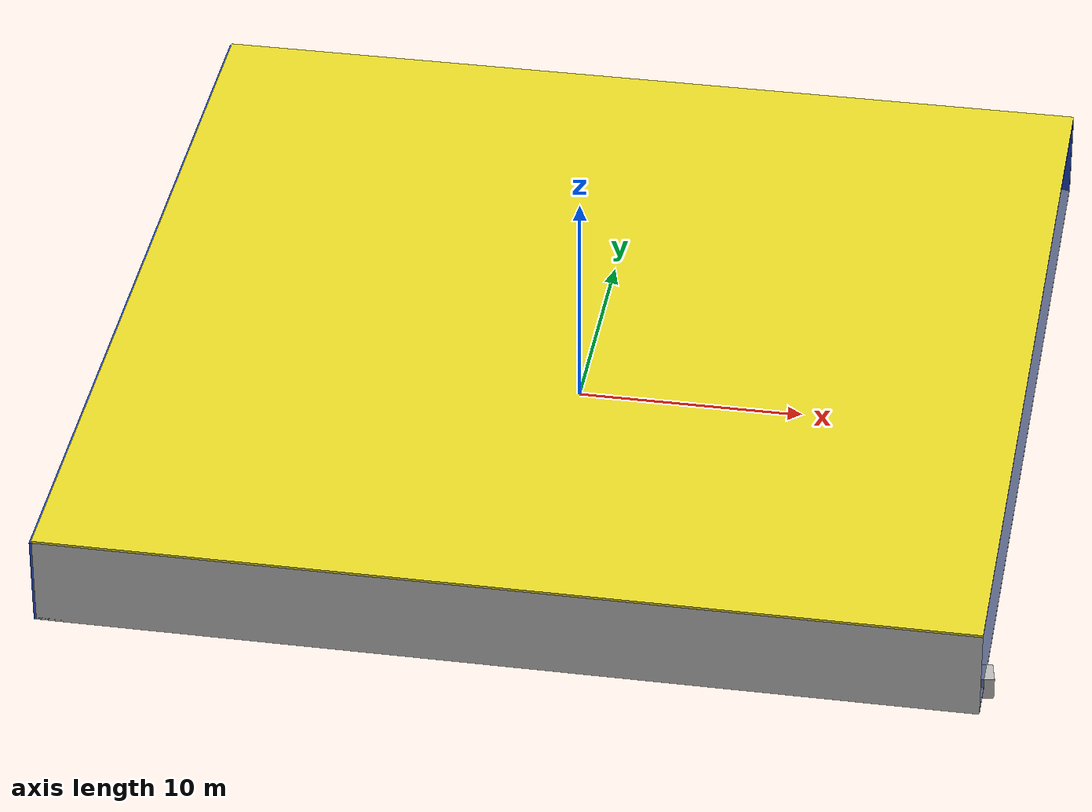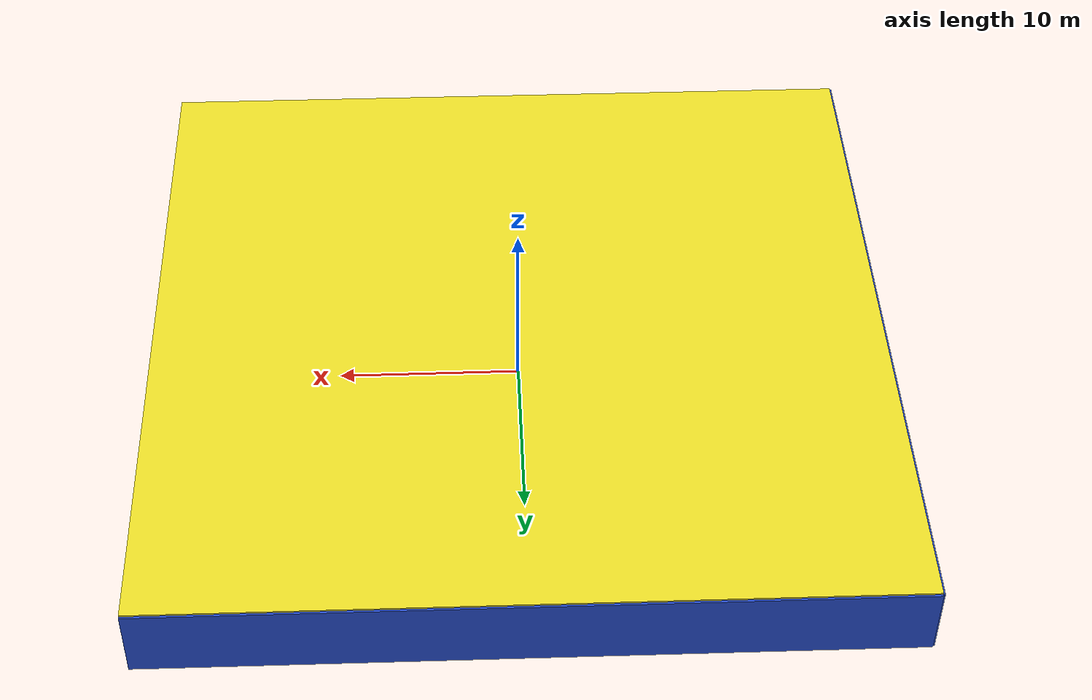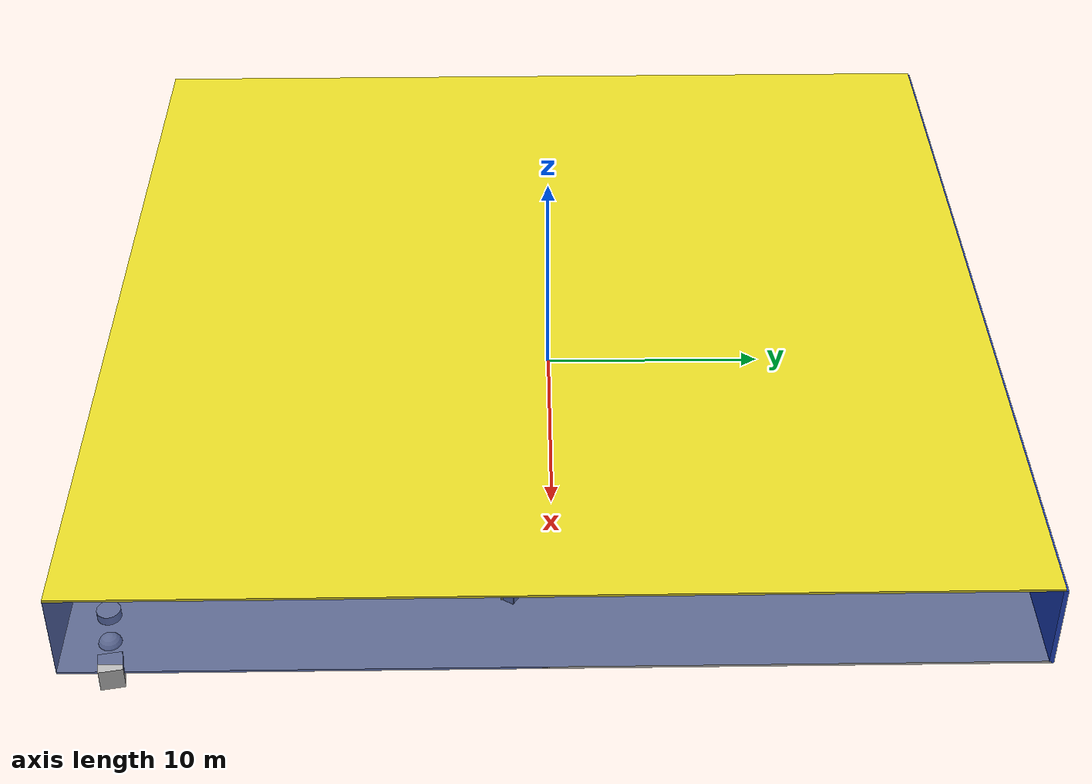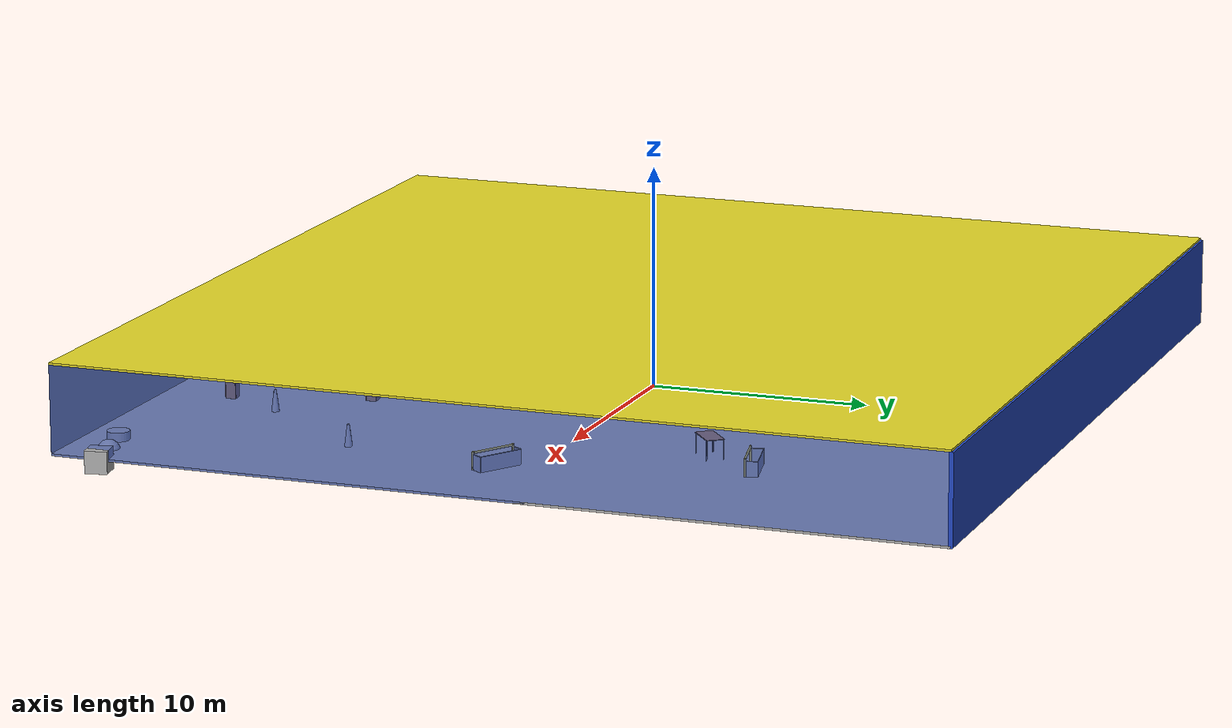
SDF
<sdf version="1.4">
 <world name="default">
  <physics type="ode">
   <max_step_size>0.001</max_step_size>
   <real_time_factor>1</real_time_factor>
   <real_time_update_rate>1000</real_time_update_rate>
   <gravity>0 0 -9.8</gravity>
  </physics>
  <scene><ambient>0.4 0.4 0.4 1</ambient><background>0.7 0.7 0.7 1</background><shadows>1</shadows></scene>
  <model name="Surrounding">
   <static>1</static>
   <link name="Ceiling">
    <collision name="Ceiling_Collision"><geometry><box><size>40 40 0.1</size></box></geometry></collision>
    <visual name="Ceiling_Visual">
     <geometry><box><size>40 40 0.1</size></box></geometry>
     <material>
      <script><uri>file://media/materials/scripts/gazebo.material</uri><name>Gazebo/Yellow</name></script>
     </material>
    </visual>
    <pose>0 0 4.05 0 0 0</pose>
   </link>
   <link name="Wall_South">
    <collision name="Wall_South_Collision">
     <geometry><box><size>40 0 4</size></box></geometry>
     <pose>0 0 2 0 -0 0</pose>
    </collision>
    <visual name="Wall_South_Visual">
     <pose>0 0 2 0 -0 0</pose>
     <geometry><box><size>40 0 4</size></box></geometry>
     <material>
      <script><uri>file://media/materials/scripts/gazebo.material</uri><name>Gazebo/LightOff</name></script>
     </material>
    </visual>
    <velocity_decay><linear>0</linear><angular>0</angular></velocity_decay>
    <pose>0 -20 0 0 -0 0</pose>
   </link>
   <link name="Wall_East">
    <collision name="Wall_21_Collision">
     <geometry><box><size>40 0 4</size></box></geometry>
     <pose>0 0 2 0 -0 0</pose>
    </collision>
    <visual name="Wall_21_Visual">
     <pose>0 0 2 0 -0 0</pose>
     <geometry><box><size>40 0 4</size></box></geometry>
     <material>
      <script><uri>file://media/materials/scripts/gazebo.material</uri><name>Gazebo/BlueTransparent</name></script>
     </material>
    </visual>
    <velocity_decay><linear>0</linear><angular>0</angular></velocity_decay>
    <pose>20 0 0 0 -0 1.5708</pose>
   </link>
   <link name="Wall_North">
    <collision name="Wall_22_Collision">
     <geometry><box><size>40 0.2 4</size></box></geometry>
     <pose>0 0 2 0 -0 0</pose>
    </collision>
    <visual name="Wall_22_Visual">
     <pose>0 0 2 0 -0 0</pose>
     <geometry><box><size>40 0.2 4</size></box></geometry>
     <material>
      <script><uri>file://media/materials/scripts/gazebo.material</uri><name>Gazebo/Blue</name></script>
     </material>
    </visual>
    <velocity_decay><linear>0</linear><angular>0</angular></velocity_decay>
    <pose>0 20 0 0 -0 0</pose>
   </link>
   <link name="Wall_West">
    <collision name="Wall_23_Collision">
     <geometry><box><size>40 0.2 4</size></box></geometry>
     <pose>0 0 2 0 -0 0</pose>
    </collision>
    <visual name="Wall_23_Visual">
     <pose>0 0 2 0 -0 0</pose>
     <geometry><box><size>40 0.2 4</size></box></geometry>
     <material>
      <script><uri>file://media/materials/scripts/gazebo.material</uri><name>Gazebo/Blue</name></script>
     </material>
    </visual>
    <velocity_decay><linear>0</linear><angular>0</angular></velocity_decay>
    <pose>-20 0 0 0 0 -1.5708</pose>
   </link>
   <link name="Ground_link">
    <collision name="collision">
     <pose>0 0 .05 0 -0 0</pose>
     <geometry><box><size>40 40 0.1</size></box></geometry>
    </collision>
    <visual name="visual">
     <pose>0 0 .05 0 -0 0</pose>
     <geometry><box><size>40 40 0.1</size></box></geometry>
     <material>
      <script><uri>file://media/materials/scripts/gazebo.material</uri><name>Gazebo/JointAnchor</name></script>
     </material>
    </visual>
   </link>
   <static>1</static>
  </model>
  <spherical_coordinates>
   <surface_model>EARTH_WGS84</surface_model>
   <latitude_deg>0</latitude_deg>
   <longitude_deg>0</longitude_deg>
   <elevation>0</elevation>
   <heading_deg>0</heading_deg>
  </spherical_coordinates>
  <light name="lightball_0" type="diffuse">
   <diffuse>0.8 0.8 0.8 1</diffuse>
   <specular>0.2 0.2 0.2 1</specular>
   <attenuation>
    <range>100</range>
    <constant>0.7</constant>
    <linear>0.01</linear>
    <quadratic>0.001</quadratic>
   </attenuation>
   <direction>-0.5 0.1 -0.9</direction>
   <pose>18.4746722084 -15.3143285718 3.06621163098 0 0 0</pose>
  </light>
  <include>
   <uri>model://robocup_3Dsim_goal</uri>
   <pose>-16.6803846 14.4970352041 0 0 0 2.13332449425</pose>
  </include>
  <include><uri>model://cabinet</uri><pose>-11.3547218669 -15.0713048821 0 0 0 1.00112441998</pose></include>
  <include>
   <uri>model://textured_shapes</uri>
   <pose>-12.5507739588 -0.528864094843 0 0 0 0.98857972124</pose>
  </include>
  <include>
   <uri>model://construction_cone</uri>
   <pose>-11.6344234217 19.3330163768 0 0 0 0.96620669713</pose>
  </include>
  <include><uri>model://table</uri><pose>-9.66717411428 -7.64779849057 0 0 0 1.8220682734</pose></include>
  <include>
   <uri>model://robocup_3Dsim_goal</uri>
   <pose>-4.56773384621 -8.00097673818 0 0 0 0.745396736649</pose>
  </include>
  <include><uri>model://cabinet</uri><pose>-4.46416555028 1.30149293229 0 0 0 1.54813866483</pose></include>
  <include><uri>model://cabinet</uri><pose>-4.98176115684 18.3562745493 0 0 0 2.10712333686</pose></include>
  <include><uri>model://table</uri><pose>-2.04505803217 15.7791290002 0 0 0 1.44291282116</pose></include>
  <include><uri>model://table</uri><pose>1.23148799536 -17.2798227203 0 0 0 2.79415040299</pose></include>
  <include>
   <uri>model://construction_cone</uri>
   <pose>3.58742226361 -5.34348848101 0 0 0 2.6252572143</pose>
  </include>
  <include>
   <uri>model://construction_cone</uri>
   <pose>2.81587736469 15.7851168654 0 0 0 1.70582944953</pose>
  </include>
  <include><uri>model://cabinet</uri><pose>6.99989431587 -10.7239043447 0 0 0 0.031955138806</pose></include>
  <include><uri>model://cabinet</uri><pose>8.76202942358 -16.748435262 0 0 0 0.063693391024</pose></include>
  <include>
   <uri>model://construction_cone</uri>
   <pose>10.2773397681 -13.9647080358 0 0 0 0.96571246425</pose>
  </include>
  <include><uri>model://table</uri><pose>10.6413181056 6.45443374803 0 0 0 0.679133423788</pose></include>
  <include>
   <uri>model://robocup_3Dsim_goal</uri>
   <pose>12.1793691248 8.6986851986 0 0 0 1.78889401132</pose>
  </include>
  <include>
   <uri>model://construction_cone</uri>
   <pose>14.5033544783 -8.60144064526 0 0 0 0.574268881745</pose>
  </include>
  <include>
   <uri>model://robocup_3Dsim_goal</uri>
   <pose>15.2704490388 -1.60419710287 0 0 0 1.00747944067</pose>
  </include>
  <include>
   <uri>model://textured_shapes</uri>
   <pose>18.3765777917 -18.0803808169 0 0 0 1.74741287666</pose>
  </include>
 </world>
</sdf>

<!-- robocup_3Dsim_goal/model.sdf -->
<sdf version="1.5">
  <model name="robocup_3d_goal">
    <static>true</static>
    <link name="left_post">
      <pose>0 1.05 0.45 0 0 0</pose>
      <collision name="collision">
        <geometry>
          <cylinder>
            <radius>0.05</radius>
            <length>0.9</length>
          </cylinder>
        </geometry>
      </collision>
      <visual name="visual">
        <geometry>
          <cylinder>
            <radius>0.05</radius>
            <length>0.9</length>
          </cylinder>
        </geometry>
        <material>
          <script>
            <uri>file://media/materials/scripts/gazebo.material</uri>
            <name>Gazebo/ZincYellow</name>
          </script>
        </material>
      </visual>
    </link>
    <link name="left_support_horiz_lower">
      <pose>0.30 1.05 0.01 0 0 0</pose>
      <collision name="collision">
        <geometry>
          <box>
            <size>0.50 0.02 0.02</size>
          </box>
        </geometry>
      </collision>
      <visual name="visual">
        <geometry>
          <box>
            <size>0.50 0.02 0.02</size>
          </box>
        </geometry>
        <material>
          <script>
            <uri>file://media/materials/scripts/gazebo.material</uri>
            <name>Gazebo/White</name>
          </script>
        </material>
      </visual>
    </link>
    <link name="left_support_horiz_upper">
      <pose>0.30 1.05 0.79 0 0 0</pose>
      <collision name="collision">
        <geometry>
          <box>
            <size>0.50 0.02 0.02</size>
          </box>
        </geometry>
      </collision>
      <visual name="visual">
        <geometry>
          <box>
            <size>0.50 0.02 0.02</size>
          </box>
        </geometry>
        <material>
          <script>
            <uri>file://media/materials/scripts/gazebo.material</uri>
            <name>Gazebo/White</name>
          </script>
        </material>
      </visual>
    </link>
    <link name="left_support_vertical">
      <pose>0.56 1.05 0.4 0 1.5708 0</pose>
      <collision name="collision">
        <geometry>
          <box>
            <size>0.80 0.02 0.02</size>
          </box>
        </geometry>
      </collision>
      <visual name="visual">
        <geometry>
          <box>
            <size>0.80 0.02 0.02</size>
          </box>
        </geometry>
        <material>
          <script>
            <uri>file://media/materials/scripts/gazebo.material</uri>
            <name>Gazebo/White</name>
          </script>
        </material>
      </visual>
    </link>
    <link name="right_support_horiz_lower">
      <pose>0.30 -1.05 0.01 0 0 0</pose>
      <collision name="collision">
        <geometry>
          <box>
            <size>0.50 0.02 0.02</size>
          </box>
        </geometry>
      </collision>
      <visual name="visual">
        <geometry>
          <box>
            <size>0.50 0.02 0.02</size>
          </box>
        </geometry>
        <material>
          <script>
            <uri>file://media/materials/scripts/gazebo.material</uri>
            <name>Gazebo/White</name>
          </script>
        </material>
      </visual>
    </link>
    <link name="right_support_horiz_upper">
      <pose>0.30 -1.05 0.79 0 0 0</pose>
      <collision name="collision">
        <geometry>
          <box>
            <size>0.50 0.02 0.02</size>
          </box>
        </geometry>
      </collision>
      <visual name="visual">
        <geometry>
          <box>
            <size>0.50 0.02 0.02</size>
          </box>
        </geometry>
        <material>
          <script>
            <uri>file://media/materials/scripts/gazebo.material</uri>
            <name>Gazebo/White</name>
          </script>
        </material>
      </visual>
    </link>
    <link name="right_support_vertical">
      <pose>0.56 -1.05 0.4 0 1.5708 0</pose>
      <collision name="collision">
        <geometry>
          <box>
            <size>0.80 0.02 0.02</size>
          </box>
        </geometry>
      </collision>
      <visual name="visual">
        <geometry>
          <box>
            <size>0.80 0.02 0.02</size>
          </box>
        </geometry>
        <material>
          <script>
            <uri>file://media/materials/scripts/gazebo.material</uri>
            <name>Gazebo/White</name>
          </script>
        </material>
      </visual>
    </link>
    <link name="center_support_horiz_lower">
      <pose>0.56 0 0.01 0 1.5708 0</pose>
      <collision name="collision">
        <geometry>
          <box>
            <size>0.02 2.08 0.02</size>
          </box>
        </geometry>
      </collision>
      <visual name="visual">
        <geometry>
          <box>
            <size>0.02 2.08 0.02</size>
          </box>
        </geometry>
        <material>
          <script>
            <uri>file://media/materials/scripts/gazebo.material</uri>
            <name>Gazebo/White</name>
          </script>
        </material>
      </visual>
    </link>
    <link name="center_support_horiz_upper">
      <pose>0.56 0 0.79 0 1.5708 0</pose>
      <collision name="collision">
        <geometry>
          <box>
            <size>0.02 2.08 0.02</size>
          </box>
        </geometry>
      </collision>
      <visual name="visual">
        <geometry>
          <box>
            <size>0.02 2.08 0.02</size>
          </box>
        </geometry>
        <material>
          <script>
            <uri>file://media/materials/scripts/gazebo.material</uri>
            <name>Gazebo/White</name>
          </script>
        </material>
      </visual>
    </link>
    <link name="right_post">
      <pose>0 -1.05 0.45 0 0 0</pose>
      <collision name="collision">
        <geometry>
          <cylinder>
            <radius>0.05</radius>
            <length>0.9</length>
          </cylinder>
        </geometry>
      </collision>
      <visual name="visual">
        <geometry>
          <cylinder>
            <radius>0.05</radius>
            <length>0.9</length>
          </cylinder>
        </geometry>
        <material>
          <script>
            <uri>file://media/materials/scripts/gazebo.material</uri>
            <name>Gazebo/ZincYellow</name>
          </script>
        </material>
      </visual>
    </link>
    <link name="crossbar">
      <pose>0 0 0.85 1.57 1.57 0</pose>
      <collision name="collision">
        <geometry>
          <cylinder>
            <radius>0.05</radius>
            <length>2.0</length>
          </cylinder>
        </geometry>
      </collision>
      <visual name="visual">
        <geometry>
          <cylinder>
            <radius>0.05</radius>
            <length>2.0</length>
          </cylinder>
        </geometry>
        <material>
          <script>
            <uri>file://media/materials/scripts/gazebo.material</uri>
            <name>Gazebo/ZincYellow</name>
          </script>
        </material>
      </visual>
    </link>
    <link name="center_net">
      <pose>0.56 0 0.40 0 0 0</pose>
      <collision name="collision">
        <geometry>
          <box>
            <size>0.01 2.1 0.80</size>
          </box>
        </geometry>
      </collision>
      <visual name="visual">
        <geometry>
          <box>
            <size>0.01 2.1 0.80</size>
          </box>
        </geometry>
        <material>
          <script>
            <uri>model://../model_source/models/robocup09_spl_field/materials/scripts/</uri>
            <uri>model://../model_source/models/robocup09_spl_field/materials/textures/</uri>
            <name>RoboCup/Net</name>
          </script>
        </material>
      </visual>
    </link>
    <link name="left_net">
      <pose>0.30 1.05 0.40 0 0 0</pose>
      <collision name="collision">
        <geometry>
          <box>
            <size>0.50 0.01 0.76</size>
          </box>
        </geometry>
      </collision>
      <visual name="visual">
        <geometry>
          <box>
            <size>0.50 0.01 0.76</size>
          </box>
        </geometry>
        <material>
          <script>
            <uri>model://../model_source/models/robocup09_spl_field/materials/scripts/</uri>
            <uri>model://../model_source/models/robocup09_spl_field/materials/textures/</uri>
            <name>RoboCup/Net</name>
          </script>
        </material>
      </visual>
    </link>
    <link name="right_net">
      <pose>0.30 -1.05 0.40 0 0 0</pose>
      <collision name="collision">
        <geometry>
          <box>
            <size>0.50 0.01 0.76</size>
          </box>
        </geometry>
      </collision>
      <visual name="visual">
        <geometry>
          <box>
            <size>0.50 0.01 0.76</size>
          </box>
        </geometry>
        <material>
          <script>
            <uri>model://../model_source/models/robocup09_spl_field/materials/scripts/</uri>
            <uri>model://../model_source/models/robocup09_spl_field/materials/textures/</uri>
            <name>RoboCup/Net</name>
          </script>
        </material>
      </visual>
    </link>
  </model>
</sdf>

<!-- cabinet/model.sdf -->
<sdf version="1.5">
  <model name="cabinet">
    <static>true</static>
    <link name="cabinet_bottom_plate">
      <inertial>
        <pose>0 0 -1 0 0 0</pose>
        <inertia>
          <ixx>2.050000</ixx>
          <ixy>0</ixy>
          <ixz>0</ixz>
          <iyy>2.050000</iyy>
          <iyz>0</iyz>
          <izz>2.050000</izz>
        </inertia>
        <mass>25.000000</mass>
      </inertial>
      <collision name="cabinet_bottom_plate_geom">
        <pose>0 0 0.010000 0 0 0</pose>
        <geometry>
          <box>
            <size>0.450000 0.450000 0.020000</size>
          </box>
        </geometry>
      </collision>
      <visual name="cabinet_bottom_plate_geom_visual">
        <pose>0 0 0.010000 0 0 0</pose>
        <geometry>
          <box>
            <size>0.450000 0.450000 0.020000</size>
          </box>
        </geometry>
        <material>
          <script>
            <uri>model://media/materials/scripts/gazebo.material</uri>
            <name>Gazebo/Wood</name>
          </script>
        </material>
      </visual>
      <collision name="cabinet_bottom_plate_geom_cabinet_back_plate">
        <pose>0.235000 0 0.510000 0 0 0</pose>
        <geometry>
          <box>
            <size>0.020000 0.450000 1.020000</size>
          </box>
        </geometry>
      </collision>
      <visual name="cabinet_bottom_plate_geom_cabinet_back_plate_visual">
        <pose>0.235000 0 0.510000 0 0 0</pose>
        <geometry>
          <box>
            <size>0.020000 0.450000 1.020000</size>
          </box>
        </geometry>
        <material>
          <script>
            <uri>model://media/materials/scripts/gazebo.material</uri>
            <name>Gazebo/Wood</name>
          </script>
        </material>
      </visual>
      <collision name="cabinet_bottom_plate_geom_cabinet_left_plate">
        <pose>0 0.235000 0.510000 0 0 0</pose>
        <geometry>
          <box>
            <size>0.450000 0.020000 1.020000</size>
          </box>
        </geometry>
      </collision>
      <visual name="cabinet_bottom_plate_geom_cabinet_left_plate_visual">
        <pose>0 0.235000 0.510000 0 0 0</pose>
        <geometry>
          <box>
            <size>0.450000 0.020000 1.020000</size>
          </box>
        </geometry>
        <material>
          <script>
            <uri>model://media/materials/scripts/gazebo.material</uri>
            <name>Gazebo/Wood</name>
          </script>
        </material>
      </visual>
      <collision name="cabinet_bottom_plate_geom_cabinet_middle_plate">
        <pose>0 0 0.510000 0 0 0</pose>
        <geometry>
          <box>
            <size>0.450000 0.450000 0.020000</size>
          </box>
        </geometry>
      </collision>
      <visual name="cabinet_bottom_plate_geom_cabinet_middle_plate_visual">
        <pose>0 0 0.510000 0 0 0</pose>
        <geometry>
          <box>
            <size>0.450000 0.450000 0.020000</size>
          </box>
        </geometry>
        <material>
          <script>
            <uri>model://media/materials/scripts/gazebo.material</uri>
            <name>Gazebo/Wood</name>
          </script>
        </material>
      </visual>
      <collision name="cabinet_bottom_plate_geom_cabinet_right_plate">
        <pose>0 -0.235000 0.510000 0 0 0</pose>
        <geometry>
          <box>
            <size>0.450000 0.020000 1.020000</size>
          </box>
        </geometry>
      </collision>
      <visual name="cabinet_bottom_plate_geom_cabinet_right_plate_visual">
        <pose>0 -0.235000 0.510000 0 0 0</pose>
        <geometry>
          <box>
            <size>0.450000 0.020000 1.020000</size>
          </box>
        </geometry>
        <material>
          <script>
            <uri>model://media/materials/scripts/gazebo.material</uri>
            <name>Gazebo/Wood</name>
          </script>
        </material>
      </visual>
      <collision name="cabinet_bottom_plate_geom_cabinet_top_plate">
        <pose>0 0 1.010000 0 0 0</pose>
        <geometry>
          <box>
            <size>0.450000 0.450000 0.020000</size>
          </box>
        </geometry>
      </collision>
      <visual name="cabinet_bottom_plate_geom_cabinet_top_plate_visual">
        <pose>0 0 1.010000 0 0 0</pose>
        <geometry>
          <box>
            <size>0.450000 0.450000 0.020000</size>
          </box>
        </geometry>
        <material>
          <script>
            <uri>model://media/materials/scripts/gazebo.material</uri>
            <name>Gazebo/Wood</name>
          </script>
        </material>
      </visual>
    </link>
  </model>
</sdf>

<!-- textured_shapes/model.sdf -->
<sdf version="1.6">
  <model name="textured_shapes">
    <pose>0 0 0.5 0 0 0</pose>
    <link name="box">
      <pose>0 -1.5 0 0 0 0</pose>
      <collision name="collision">
        <geometry>
          <box>
            <size>1 1 1</size>
          </box>
        </geometry>
      </collision>
      <visual name="visual">
        <geometry>
          <box>
            <size>1 1 1</size>
          </box>
        </geometry>
        <material>
          <script>
            <uri>model://../model_source/models/textured_shapes/materials/scripts</uri>
            <uri>model://../model_source/models/textured_shapes/materials/textures</uri>
            <name>TexturedShape/Squares</name>
          </script>
        </material>
      </visual>
    </link>
    <link name="sphere">
      <collision name="collision">
        <geometry>
          <sphere>
            <radius>0.5</radius>
          </sphere>
        </geometry>
      </collision>
      <visual name="visual">
        <geometry>
          <sphere>
            <radius>0.5</radius>
          </sphere>
        </geometry>
        <material>
          <script>
            <uri>model://../model_source/models/textured_shapes/materials/scripts</uri>
            <uri>model://../model_source/models/textured_shapes/materials/textures</uri>
            <name>TexturedShape/Squares</name>
          </script>
        </material>
      </visual>
    </link>
    <link name="cylinder">
      <pose>0 1.5 0 0 0 0</pose>
      <collision name="collision">
        <geometry>
          <cylinder>
            <radius>0.5</radius>
            <length>1</length>
          </cylinder>
        </geometry>
      </collision>
      <visual name="visual">
        <geometry>
          <cylinder>
            <radius>0.5</radius>
            <length>1</length>
          </cylinder>
        </geometry>
        <material>
          <script>
            <uri>model://../model_source/models/textured_shapes/materials/scripts</uri>
            <uri>model://../model_source/models/textured_shapes/materials/textures</uri>
            <name>TexturedShape/Squares</name>
          </script>
        </material>
      </visual>
    </link>
  </model>
</sdf>

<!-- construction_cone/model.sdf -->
<sdf version="1.5">
  <model name="Construction Cone">
    <link name="link">
      <collision name="collision">
        <geometry>
          <mesh>
            <scale>10 10 10</scale>
            <uri>file://isr-testbed/construction_cone/meshes/construction_cone.dae</uri>
          </mesh>
        </geometry>
      </collision>
      <visual name="visual">
        <geometry>
          <mesh>
            <scale>10 10 10</scale>
            <uri>file://isr-testbed/construction_cone/meshes/construction_cone.dae</uri>
          </mesh>
        </geometry>
      </visual>
    </link>
  </model>
</sdf>

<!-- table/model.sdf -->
<sdf version="1.5">
  <model name="table">
    <static>true</static>
    <link name="link">
      <collision name="surface">
        <pose>0 0 1.0 0 0 0</pose>
        <geometry>
          <box>
            <size>1.5 0.8 0.03</size>
          </box>
        </geometry>
        <surface>
          <friction>
            <ode>
              <mu>0.6</mu>
              <mu2>0.6</mu2>
            </ode>
          </friction>
        </surface>
      </collision>
      <visual name="visual1">
        <pose>0 0 1.0 0 0 0</pose>
        <geometry>
          <box>
            <size>1.5 0.8 0.03</size>
          </box>
        </geometry>
        <material>
          <script>
            <uri>model://media/materials/scripts/gazebo.material</uri>
            <name>Gazebo/Wood</name>
          </script>
        </material>
      </visual>
      <collision name="front_left_leg">
        <pose>0.68 0.38 0.5 0 0 0</pose>
        <geometry>
          <cylinder>
            <radius>0.02</radius>
            <length>1.0</length>
          </cylinder>
        </geometry>
      </collision>
      <visual name="front_left_leg">
        <pose>0.68 0.38 0.5 0 0 0</pose>
        <geometry>
          <cylinder>
            <radius>0.02</radius>
            <length>1.0</length>
          </cylinder>
        </geometry>
        <material>
          <script>
            <uri>model://media/materials/scripts/gazebo.material</uri>
            <name>Gazebo/Grey</name>
          </script>
        </material>
      </visual>
      <collision name="front_right_leg">
        <pose>0.68 -0.38 0.5 0 0 0</pose>
        <geometry>
          <cylinder>
            <radius>0.02</radius>
            <length>1.0</length>
          </cylinder>
        </geometry>
      </collision>
      <visual name="front_right_leg">
        <pose>0.68 -0.38 0.5 0 0 0</pose>
        <geometry>
          <cylinder>
            <radius>0.02</radius>
            <length>1.0</length>
          </cylinder>
        </geometry>
        <material>
          <script>
            <uri>model://media/materials/scripts/gazebo.material</uri>
            <name>Gazebo/Grey</name>
          </script>
        </material>
      </visual>
      <collision name="back_right_leg">
        <pose>-0.68 -0.38 0.5 0 0 0</pose>
        <geometry>
          <cylinder>
            <radius>0.02</radius>
            <length>1.0</length>
          </cylinder>
        </geometry>
      </collision>
      <visual name="back_right_leg">
        <pose>-0.68 -0.38 0.5 0 0 0</pose>
        <geometry>
          <cylinder>
            <radius>0.02</radius>
            <length>1.0</length>
          </cylinder>
        </geometry>
        <material>
          <script>
            <uri>model://media/materials/scripts/gazebo.material</uri>
            <name>Gazebo/Grey</name>
          </script>
        </material>
      </visual>
      <collision name="back_left_leg">
        <pose>-0.68 0.38 0.5 0 0 0</pose>
        <geometry>
          <cylinder>
            <radius>0.02</radius>
            <length>1.0</length>
          </cylinder>
        </geometry>
      </collision>
      <visual name="back_left_leg">
        <pose>-0.68 0.38 0.5 0 0 0</pose>
        <geometry>
          <cylinder>
            <radius>0.02</radius>
            <length>1.0</length>
          </cylinder>
        </geometry>
        <material>
          <script>
            <uri>model://media/materials/scripts/gazebo.material</uri>
            <name>Gazebo/Grey</name>
          </script>
        </material>
      </visual>
    </link>
  </model>
</sdf>
